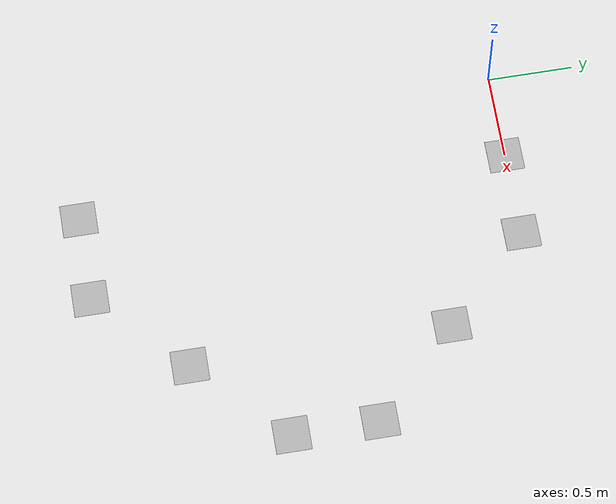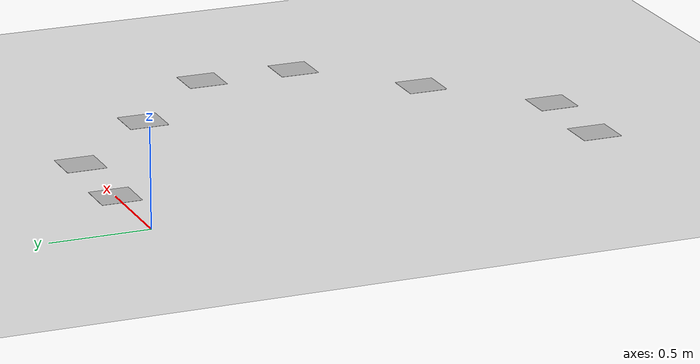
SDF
<sdf version="1.6">
 <world name="default">
  <light name="sun" type="directional">
   <pose>0 0 10 0 -0 0</pose>
   <diffuse>0.8 0.8 0.8 1</diffuse>
   <specular>0.2 0.2 0.2 1</specular>
   <attenuation>
    <range>1000</range>
    <constant>0.9</constant>
    <linear>0.01</linear>
    <quadratic>0.001</quadratic>
   </attenuation>
   <direction>-0.5 0.1 -0.9</direction>
  </light>
  <model name="ground_plane">
   <static>1</static>
   <link name="link">
    <collision name="collision">
     <geometry><plane><normal>0 0 1</normal><size>100 100</size></plane></geometry>
     <surface><friction><ode><mu>100</mu><mu2>50</mu2></ode></friction></surface>
    </collision>
    <visual name="visual">
     <cast_shadows>0</cast_shadows>
     <geometry><plane><normal>0 0 1</normal><size>100 100</size></plane></geometry>
     <material>
      <script><uri>file://media/materials/scripts/gazebo.material</uri><name>Gazebo/WhiteGlow</name></script>
     </material>
    </visual>
   </link>
  </model>
  <include><uri>model://Apriltag36_11_00000</uri><pose>0.5 0 0 0 0 0</pose></include>
  <include><uri>model://Apriltag36_11_00001</uri><pose>1 0 0 0 0 0</pose></include>
  <include><uri>model://Apriltag36_11_00002</uri><pose>1.5 -0.5 0 0 0 0</pose></include>
  <include><uri>model://Apriltag36_11_00003</uri><pose>2 -1 0 0 0 0</pose></include>
  <include><uri>model://Apriltag36_11_00004</uri><pose>2 -1.5 0 0 0 0</pose></include>
  <include><uri>model://Apriltag36_11_00005</uri><pose>1.5 -2 0 0 0 0</pose></include>
  <include><uri>model://Apriltag36_11_00006</uri><pose>1 -2.5 0 0 0 0</pose></include>
  <include><uri>model://Apriltag36_11_00007</uri><pose>0.5 -2.5 0 0 0 0</pose></include>
  <gravity>0 0 -9.8</gravity>
  <magnetic_field>6e-06 2.3e-05 -4.2e-05</magnetic_field>
  <atmosphere type="adiabatic"/>
  <physics name="default_physics" default="0" type="ode">
   <max_step_size>0.001</max_step_size>
   <real_time_factor>1</real_time_factor>
   <real_time_update_rate>1000</real_time_update_rate>
  </physics>
  <scene><ambient>0.4 0.4 0.4 1</ambient><background>0.7 0.7 0.7 1</background><shadows>1</shadows></scene>
  <spherical_coordinates>
   <surface_model>EARTH_WGS84</surface_model>
   <latitude_deg>0</latitude_deg>
   <longitude_deg>0</longitude_deg>
   <elevation>0</elevation>
   <heading_deg>0</heading_deg>
  </spherical_coordinates>
 </world>
</sdf>

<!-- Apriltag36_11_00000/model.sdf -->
<sdf version='1.6'>
  <model name='Apriltag36_11_00000'>
    <link name='main'>
    <pose frame=''>0 0 0 0 0 0</pose>
      <visual name='main_Visual'>
        <geometry>
          <box>
            <size>0.2016 0.2016 0.001</size>
          </box>
        </geometry>
           <material>
          <script>
            <uri>model://Apriltag36_11_00000/materials/scripts</uri>
            <uri>model://Apriltag36_11_00000/materials/textures</uri>
            <name>Apriltag36_11_00000</name>
          </script>
        </material>
      </visual>
     </link>
    <static>1</static>
  </model>
</sdf>

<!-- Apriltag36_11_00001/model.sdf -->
<sdf version='1.6'>
  <model name='Apriltag36_11_00001'>
    <link name='main'>
    <pose frame=''>0 0 0 0 0 0</pose>
      <visual name='main_Visual'>
        <geometry>
          <box>
            <size>0.2016 0.2016 0.001</size>
          </box>
        </geometry>
           <material>
          <script>
            <uri>model://Apriltag36_11_00001/materials/scripts</uri>
            <uri>model://Apriltag36_11_00001/materials/textures</uri>
            <name>Apriltag36_11_00001</name>
          </script>
        </material>
      </visual>
     </link>
    <static>1</static>
  </model>
</sdf>

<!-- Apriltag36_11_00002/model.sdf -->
<sdf version='1.6'>
  <model name='Apriltag36_11_00002'>
    <link name='main'>
    <pose frame=''>0 0 0 0 0 0</pose>
      <visual name='main_Visual'>
        <geometry>
          <box>
            <size>0.2016 0.2016 0.001</size>
          </box>
        </geometry>
           <material>
          <script>
            <uri>model://Apriltag36_11_00002/materials/scripts</uri>
            <uri>model://Apriltag36_11_00002/materials/textures</uri>
            <name>Apriltag36_11_00002</name>
          </script>
        </material>
      </visual>
     </link>
    <static>1</static>
  </model>
</sdf>

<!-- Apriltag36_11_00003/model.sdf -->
<sdf version='1.6'>
  <model name='Apriltag36_11_00003'>
    <link name='main'>
    <pose frame=''>0 0 0 0 0 0</pose>
      <visual name='main_Visual'>
        <geometry>
          <box>
            <size>0.2016 0.2016 0.001</size>
          </box>
        </geometry>
           <material>
          <script>
            <uri>model://Apriltag36_11_00003/materials/scripts</uri>
            <uri>model://Apriltag36_11_00003/materials/textures</uri>
            <name>Apriltag36_11_00003</name>
          </script>
        </material>
      </visual>
     </link>
    <static>1</static>
  </model>
</sdf>

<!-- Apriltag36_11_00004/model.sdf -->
<sdf version='1.6'>
  <model name='Apriltag36_11_00004'>
    <link name='main'>
    <pose frame=''>0 0 0 0 0 0</pose>
      <visual name='main_Visual'>
        <geometry>
          <box>
            <size>0.2016 0.2016 0.001</size>
          </box>
        </geometry>
           <material>
          <script>
            <uri>model://Apriltag36_11_00004/materials/scripts</uri>
            <uri>model://Apriltag36_11_00004/materials/textures</uri>
            <name>Apriltag36_11_00004</name>
          </script>
        </material>
      </visual>
     </link>
    <static>1</static>
  </model>
</sdf>

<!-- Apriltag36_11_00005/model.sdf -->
<sdf version='1.6'>
  <model name='Apriltag36_11_00005'>
    <link name='main'>
    <pose frame=''>0 0 0 0 0 0</pose>
      <visual name='main_Visual'>
        <geometry>
          <box>
            <size>0.2016 0.2016 0.001</size>
          </box>
        </geometry>
           <material>
          <script>
            <uri>model://Apriltag36_11_00005/materials/scripts</uri>
            <uri>model://Apriltag36_11_00005/materials/textures</uri>
            <name>Apriltag36_11_00005</name>
          </script>
        </material>
      </visual>
     </link>
    <static>1</static>
  </model>
</sdf>

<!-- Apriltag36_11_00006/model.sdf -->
<sdf version='1.6'>
  <model name='Apriltag36_11_00006'>
    <link name='main'>
    <pose frame=''>0 0 0 0 0 0</pose>
      <visual name='main_Visual'>
        <geometry>
          <box>
            <size>0.2016 0.2016 0.001</size>
          </box>
        </geometry>
           <material>
          <script>
            <uri>model://Apriltag36_11_00006/materials/scripts</uri>
            <uri>model://Apriltag36_11_00006/materials/textures</uri>
            <name>Apriltag36_11_00006</name>
          </script>
        </material>
      </visual>
     </link>
    <static>1</static>
  </model>
</sdf>

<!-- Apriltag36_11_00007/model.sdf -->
<sdf version='1.6'>
  <model name='Apriltag36_11_00007'>
    <link name='main'>
    <pose frame=''>0 0 0 0 0 0</pose>
      <visual name='main_Visual'>
        <geometry>
          <box>
            <size>0.2016 0.2016 0.001</size>
          </box>
        </geometry>
           <material>
          <script>
            <uri>model://Apriltag36_11_00007/materials/scripts</uri>
            <uri>model://Apriltag36_11_00007/materials/textures</uri>
            <name>Apriltag36_11_00007</name>
          </script>
        </material>
      </visual>
     </link>
    <static>1</static>
  </model>
</sdf>
